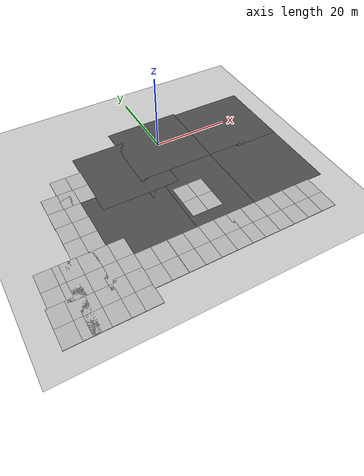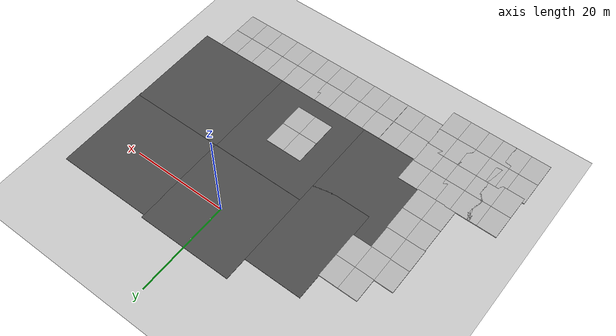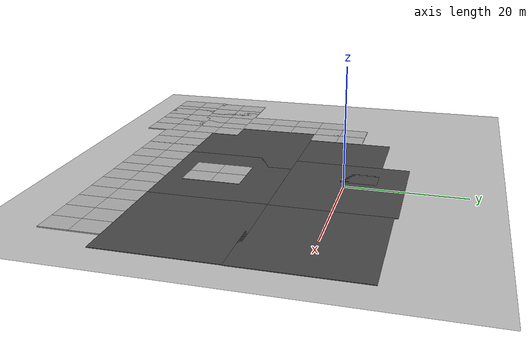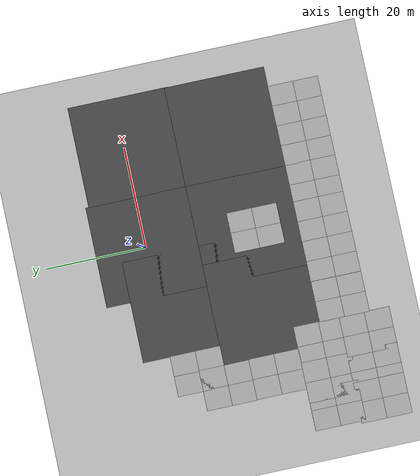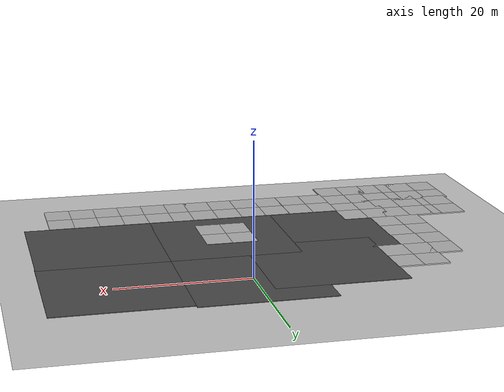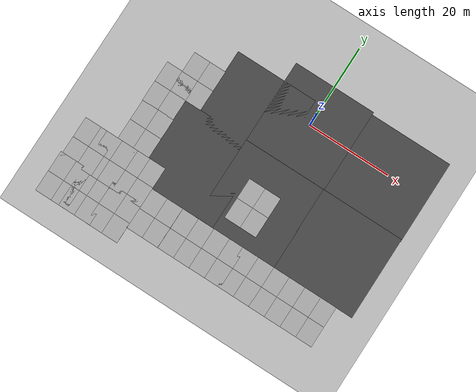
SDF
<sdf version="1.6">
 <world name="default">
  <model name="ground_plane">
   <static>1</static>
   <link name="link">
    <collision name="collision">
     <geometry><plane><normal>0 0 1</normal><size>100 100</size></plane></geometry>
     <surface><friction><ode><mu>100</mu><mu2>50</mu2></ode></friction></surface>
    </collision>
    <visual name="visual">
     <cast_shadows>0</cast_shadows>
     <geometry><plane><normal>0 0 1</normal><size>100 100</size></plane></geometry>
     <material>
      <script><uri>file://media/materials/scripts/gazebo.material</uri><name>Gazebo/Grey</name></script>
     </material>
    </visual>
   </link>
  </model>
  <model name="asphalt_plane">
   <static>1</static>
   <link name="link">
    <collision name="collision"><geometry><box><size>20 20 0.1</size></box></geometry></collision>
    <visual name="visual">
     <cast_shadows>0</cast_shadows>
     <geometry><box><size>20 20 0.1</size></box></geometry>
     <material>
      <script>
       <uri>model://asphalt_plane/materials/scripts</uri>
       <uri>model://asphalt_plane/materials/textures</uri>
       <name>vrc/asphalt</name>
      </script>
     </material>
    </visual>
   </link>
   <pose>0.101082 -0.112041 0 0 -0 0</pose>
  </model>
  <model name="mud_box_1">
   <static>1</static>
   <link name="link">
    <collision name="collision"><geometry><box><size>8 10 0.2</size></box></geometry></collision>
    <visual name="visual_1">
     <pose>-2 2.5 0 0 -0 0</pose>
     <cast_shadows>0</cast_shadows>
     <geometry><box><size>4 5 0.2</size></box></geometry>
     <material>
      <script>
       <uri>model://mud_box/materials/scripts</uri>
       <uri>model://mud_box/materials/textures</uri>
       <name>vrc/mud</name>
      </script>
     </material>
    </visual>
    <visual name="visual_2">
     <pose>2 2.5 0 0 -0 0</pose>
     <cast_shadows>0</cast_shadows>
     <geometry><box><size>4 5 0.2</size></box></geometry>
     <material>
      <script>
       <uri>model://mud_box/materials/scripts</uri>
       <uri>model://mud_box/materials/textures</uri>
       <name>vrc/mud</name>
      </script>
     </material>
    </visual>
    <visual name="visual_3">
     <pose>2 -2.5 0 0 -0 0</pose>
     <cast_shadows>0</cast_shadows>
     <geometry><box><size>4 5 0.2</size></box></geometry>
     <material>
      <script>
       <uri>model://mud_box/materials/scripts</uri>
       <uri>model://mud_box/materials/textures</uri>
       <name>vrc/mud</name>
      </script>
     </material>
    </visual>
    <visual name="visual_4">
     <pose>-2 -2.5 0 0 -0 0</pose>
     <cast_shadows>0</cast_shadows>
     <geometry><box><size>4 5 0.2</size></box></geometry>
     <material>
      <script>
       <uri>model://mud_box/materials/scripts</uri>
       <uri>model://mud_box/materials/textures</uri>
       <name>vrc/mud</name>
      </script>
     </material>
    </visual>
   </link>
   <pose>-38.2715 -38.9821 0 0 -0 0</pose>
  </model>
  <model name="mud_box_1_clone">
   <static>1</static>
   <link name="link">
    <collision name="collision"><geometry><box><size>8 10 0.2</size></box></geometry></collision>
    <visual name="visual_1">
     <pose>-2 2.5 0 0 -0 0</pose>
     <cast_shadows>0</cast_shadows>
     <geometry><box><size>4 5 0.2</size></box></geometry>
     <material>
      <script>
       <uri>model://mud_box/materials/scripts</uri>
       <uri>model://mud_box/materials/textures</uri>
       <name>vrc/mud</name>
      </script>
     </material>
    </visual>
    <visual name="visual_2">
     <pose>2 2.5 0 0 -0 0</pose>
     <cast_shadows>0</cast_shadows>
     <geometry><box><size>4 5 0.2</size></box></geometry>
     <material>
      <script>
       <uri>model://mud_box/materials/scripts</uri>
       <uri>model://mud_box/materials/textures</uri>
       <name>vrc/mud</name>
      </script>
     </material>
    </visual>
    <visual name="visual_3">
     <pose>2 -2.5 0 0 -0 0</pose>
     <cast_shadows>0</cast_shadows>
     <geometry><box><size>4 5 0.2</size></box></geometry>
     <material>
      <script>
       <uri>model://mud_box/materials/scripts</uri>
       <uri>model://mud_box/materials/textures</uri>
       <name>vrc/mud</name>
      </script>
     </material>
    </visual>
    <visual name="visual_4">
     <pose>-2 -2.5 0 0 -0 0</pose>
     <cast_shadows>0</cast_shadows>
     <geometry><box><size>4 5 0.2</size></box></geometry>
     <material>
      <script>
       <uri>model://mud_box/materials/scripts</uri>
       <uri>model://mud_box/materials/textures</uri>
       <name>vrc/mud</name>
      </script>
     </material>
    </visual>
   </link>
   <pose>-37.8344 -29.8859 0 0 -0 0</pose>
  </model>
  <model name="mud_box_1_clone_0">
   <static>1</static>
   <link name="link">
    <collision name="collision"><geometry><box><size>8 10 0.2</size></box></geometry></collision>
    <visual name="visual_1">
     <pose>-2 2.5 0 0 -0 0</pose>
     <cast_shadows>0</cast_shadows>
     <geometry><box><size>4 5 0.2</size></box></geometry>
     <material>
      <script>
       <uri>model://mud_box/materials/scripts</uri>
       <uri>model://mud_box/materials/textures</uri>
       <name>vrc/mud</name>
      </script>
     </material>
    </visual>
    <visual name="visual_2">
     <pose>2 2.5 0 0 -0 0</pose>
     <cast_shadows>0</cast_shadows>
     <geometry><box><size>4 5 0.2</size></box></geometry>
     <material>
      <script>
       <uri>model://mud_box/materials/scripts</uri>
       <uri>model://mud_box/materials/textures</uri>
       <name>vrc/mud</name>
      </script>
     </material>
    </visual>
    <visual name="visual_3">
     <pose>2 -2.5 0 0 -0 0</pose>
     <cast_shadows>0</cast_shadows>
     <geometry><box><size>4 5 0.2</size></box></geometry>
     <material>
      <script>
       <uri>model://mud_box/materials/scripts</uri>
       <uri>model://mud_box/materials/textures</uri>
       <name>vrc/mud</name>
      </script>
     </material>
    </visual>
    <visual name="visual_4">
     <pose>-2 -2.5 0 0 -0 0</pose>
     <cast_shadows>0</cast_shadows>
     <geometry><box><size>4 5 0.2</size></box></geometry>
     <material>
      <script>
       <uri>model://mud_box/materials/scripts</uri>
       <uri>model://mud_box/materials/textures</uri>
       <name>vrc/mud</name>
      </script>
     </material>
    </visual>
   </link>
   <pose>-32.3465 -29.878 0 0 -0 0</pose>
  </model>
  <model name="mud_box_1_clone_1">
   <static>1</static>
   <link name="link">
    <collision name="collision"><geometry><box><size>8 10 0.2</size></box></geometry></collision>
    <visual name="visual_1">
     <pose>-2 2.5 0 0 -0 0</pose>
     <cast_shadows>0</cast_shadows>
     <geometry><box><size>4 5 0.2</size></box></geometry>
     <material>
      <script>
       <uri>model://mud_box/materials/scripts</uri>
       <uri>model://mud_box/materials/textures</uri>
       <name>vrc/mud</name>
      </script>
     </material>
    </visual>
    <visual name="visual_2">
     <pose>2 2.5 0 0 -0 0</pose>
     <cast_shadows>0</cast_shadows>
     <geometry><box><size>4 5 0.2</size></box></geometry>
     <material>
      <script>
       <uri>model://mud_box/materials/scripts</uri>
       <uri>model://mud_box/materials/textures</uri>
       <name>vrc/mud</name>
      </script>
     </material>
    </visual>
    <visual name="visual_3">
     <pose>2 -2.5 0 0 -0 0</pose>
     <cast_shadows>0</cast_shadows>
     <geometry><box><size>4 5 0.2</size></box></geometry>
     <material>
      <script>
       <uri>model://mud_box/materials/scripts</uri>
       <uri>model://mud_box/materials/textures</uri>
       <name>vrc/mud</name>
      </script>
     </material>
    </visual>
    <visual name="visual_4">
     <pose>-2 -2.5 0 0 -0 0</pose>
     <cast_shadows>0</cast_shadows>
     <geometry><box><size>4 5 0.2</size></box></geometry>
     <material>
      <script>
       <uri>model://mud_box/materials/scripts</uri>
       <uri>model://mud_box/materials/textures</uri>
       <name>vrc/mud</name>
      </script>
     </material>
    </visual>
   </link>
   <pose>-32.2902 -38.9747 0 0 -0 0</pose>
  </model>
  <model name="mud_box_1_clone_2">
   <static>1</static>
   <link name="link">
    <collision name="collision"><geometry><box><size>8 10 0.2</size></box></geometry></collision>
    <visual name="visual_1">
     <pose>-2 2.5 0 0 -0 0</pose>
     <cast_shadows>0</cast_shadows>
     <geometry><box><size>4 5 0.2</size></box></geometry>
     <material>
      <script>
       <uri>model://mud_box/materials/scripts</uri>
       <uri>model://mud_box/materials/textures</uri>
       <name>vrc/mud</name>
      </script>
     </material>
    </visual>
    <visual name="visual_2">
     <pose>2 2.5 0 0 -0 0</pose>
     <cast_shadows>0</cast_shadows>
     <geometry><box><size>4 5 0.2</size></box></geometry>
     <material>
      <script>
       <uri>model://mud_box/materials/scripts</uri>
       <uri>model://mud_box/materials/textures</uri>
       <name>vrc/mud</name>
      </script>
     </material>
    </visual>
    <visual name="visual_3">
     <pose>2 -2.5 0 0 -0 0</pose>
     <cast_shadows>0</cast_shadows>
     <geometry><box><size>4 5 0.2</size></box></geometry>
     <material>
      <script>
       <uri>model://mud_box/materials/scripts</uri>
       <uri>model://mud_box/materials/textures</uri>
       <name>vrc/mud</name>
      </script>
     </material>
    </visual>
    <visual name="visual_4">
     <pose>-2 -2.5 0 0 -0 0</pose>
     <cast_shadows>0</cast_shadows>
     <geometry><box><size>4 5 0.2</size></box></geometry>
     <material>
      <script>
       <uri>model://mud_box/materials/scripts</uri>
       <uri>model://mud_box/materials/textures</uri>
       <name>vrc/mud</name>
      </script>
     </material>
    </visual>
   </link>
   <pose>-25.1879 -38.9993 0 0 -0 0</pose>
  </model>
  <model name="mud_box_1_clone_3">
   <static>1</static>
   <link name="link">
    <collision name="collision"><geometry><box><size>8 10 0.2</size></box></geometry></collision>
    <visual name="visual_1">
     <pose>-2 2.5 0 0 -0 0</pose>
     <cast_shadows>0</cast_shadows>
     <geometry><box><size>4 5 0.2</size></box></geometry>
     <material>
      <script>
       <uri>model://mud_box/materials/scripts</uri>
       <uri>model://mud_box/materials/textures</uri>
       <name>vrc/mud</name>
      </script>
     </material>
    </visual>
    <visual name="visual_2">
     <pose>2 2.5 0 0 -0 0</pose>
     <cast_shadows>0</cast_shadows>
     <geometry><box><size>4 5 0.2</size></box></geometry>
     <material>
      <script>
       <uri>model://mud_box/materials/scripts</uri>
       <uri>model://mud_box/materials/textures</uri>
       <name>vrc/mud</name>
      </script>
     </material>
    </visual>
    <visual name="visual_3">
     <pose>2 -2.5 0 0 -0 0</pose>
     <cast_shadows>0</cast_shadows>
     <geometry><box><size>4 5 0.2</size></box></geometry>
     <material>
      <script>
       <uri>model://mud_box/materials/scripts</uri>
       <uri>model://mud_box/materials/textures</uri>
       <name>vrc/mud</name>
      </script>
     </material>
    </visual>
    <visual name="visual_4">
     <pose>-2 -2.5 0 0 -0 0</pose>
     <cast_shadows>0</cast_shadows>
     <geometry><box><size>4 5 0.2</size></box></geometry>
     <material>
      <script>
       <uri>model://mud_box/materials/scripts</uri>
       <uri>model://mud_box/materials/textures</uri>
       <name>vrc/mud</name>
      </script>
     </material>
    </visual>
   </link>
   <pose>-25.1987 -29.8666 0 0 -0 0</pose>
  </model>
  <model name="asphalt_plane_1">
   <static>1</static>
   <link name="link">
    <collision name="collision"><geometry><box><size>20 20 0.1</size></box></geometry></collision>
    <visual name="visual">
     <cast_shadows>0</cast_shadows>
     <geometry><box><size>20 20 0.1</size></box></geometry>
     <material>
      <script>
       <uri>model://asphalt_plane/materials/scripts</uri>
       <uri>model://asphalt_plane/materials/textures</uri>
       <name>vrc/asphalt</name>
      </script>
     </material>
    </visual>
   </link>
   <pose>-15.6521 -20.0746 0 0 -0 0</pose>
  </model>
  <model name="asphalt_plane_2">
   <static>1</static>
   <link name="link">
    <collision name="collision"><geometry><box><size>20 20 0.1</size></box></geometry></collision>
    <visual name="visual">
     <cast_shadows>0</cast_shadows>
     <geometry><box><size>20 20 0.1</size></box></geometry>
     <material>
      <script>
       <uri>model://asphalt_plane/materials/scripts</uri>
       <uri>model://asphalt_plane/materials/textures</uri>
       <name>vrc/asphalt</name>
      </script>
     </material>
    </visual>
   </link>
   <pose>-11.8663 -4.83897 0 0 -0 0</pose>
  </model>
  <model name="asphalt_plane_3">
   <static>1</static>
   <link name="link">
    <collision name="collision"><geometry><box><size>20 20 0.1</size></box></geometry></collision>
    <visual name="visual">
     <cast_shadows>0</cast_shadows>
     <geometry><box><size>20 20 0.1</size></box></geometry>
     <material>
      <script>
       <uri>model://asphalt_plane/materials/scripts</uri>
       <uri>model://asphalt_plane/materials/textures</uri>
       <name>vrc/asphalt</name>
      </script>
     </material>
    </visual>
   </link>
   <pose>0.069914 -20.1175 0 0 -0 0</pose>
  </model>
  <model name="mud_box">
   <static>1</static>
   <link name="link">
    <collision name="collision"><geometry><box><size>8 10 0.2</size></box></geometry></collision>
    <visual name="visual_1">
     <pose>-2 2.5 0 0 -0 0</pose>
     <cast_shadows>0</cast_shadows>
     <geometry><box><size>4 5 0.2</size></box></geometry>
     <material>
      <script>
       <uri>model://mud_box/materials/scripts</uri>
       <uri>model://mud_box/materials/textures</uri>
       <name>vrc/mud</name>
      </script>
     </material>
    </visual>
    <visual name="visual_2">
     <pose>2 2.5 0 0 -0 0</pose>
     <cast_shadows>0</cast_shadows>
     <geometry><box><size>4 5 0.2</size></box></geometry>
     <material>
      <script>
       <uri>model://mud_box/materials/scripts</uri>
       <uri>model://mud_box/materials/textures</uri>
       <name>vrc/mud</name>
      </script>
     </material>
    </visual>
    <visual name="visual_3">
     <pose>2 -2.5 0 0 -0 0</pose>
     <cast_shadows>0</cast_shadows>
     <geometry><box><size>4 5 0.2</size></box></geometry>
     <material>
      <script>
       <uri>model://mud_box/materials/scripts</uri>
       <uri>model://mud_box/materials/textures</uri>
       <name>vrc/mud</name>
      </script>
     </material>
    </visual>
    <visual name="visual_4">
     <pose>-2 -2.5 0 0 -0 0</pose>
     <cast_shadows>0</cast_shadows>
     <geometry><box><size>4 5 0.2</size></box></geometry>
     <material>
      <script>
       <uri>model://mud_box/materials/scripts</uri>
       <uri>model://mud_box/materials/textures</uri>
       <name>vrc/mud</name>
      </script>
     </material>
    </visual>
   </link>
   <pose>-17.3113 -35.1015 0 0 -0 0</pose>
  </model>
  <model name="mud_box_clone">
   <static>1</static>
   <link name="link">
    <collision name="collision"><geometry><box><size>8 10 0.2</size></box></geometry></collision>
    <visual name="visual_1">
     <pose>-2 2.5 0 0 -0 0</pose>
     <cast_shadows>0</cast_shadows>
     <geometry><box><size>4 5 0.2</size></box></geometry>
     <material>
      <script>
       <uri>model://mud_box/materials/scripts</uri>
       <uri>model://mud_box/materials/textures</uri>
       <name>vrc/mud</name>
      </script>
     </material>
    </visual>
    <visual name="visual_2">
     <pose>2 2.5 0 0 -0 0</pose>
     <cast_shadows>0</cast_shadows>
     <geometry><box><size>4 5 0.2</size></box></geometry>
     <material>
      <script>
       <uri>model://mud_box/materials/scripts</uri>
       <uri>model://mud_box/materials/textures</uri>
       <name>vrc/mud</name>
      </script>
     </material>
    </visual>
    <visual name="visual_3">
     <pose>2 -2.5 0 0 -0 0</pose>
     <cast_shadows>0</cast_shadows>
     <geometry><box><size>4 5 0.2</size></box></geometry>
     <material>
      <script>
       <uri>model://mud_box/materials/scripts</uri>
       <uri>model://mud_box/materials/textures</uri>
       <name>vrc/mud</name>
      </script>
     </material>
    </visual>
    <visual name="visual_4">
     <pose>-2 -2.5 0 0 -0 0</pose>
     <cast_shadows>0</cast_shadows>
     <geometry><box><size>4 5 0.2</size></box></geometry>
     <material>
      <script>
       <uri>model://mud_box/materials/scripts</uri>
       <uri>model://mud_box/materials/textures</uri>
       <name>vrc/mud</name>
      </script>
     </material>
    </visual>
   </link>
   <pose>-9.27186 -35.0984 0 0 -0 0</pose>
  </model>
  <model name="mud_box_clone_0">
   <static>1</static>
   <link name="link">
    <collision name="collision"><geometry><box><size>8 10 0.2</size></box></geometry></collision>
    <visual name="visual_1">
     <pose>-2 2.5 0 0 -0 0</pose>
     <cast_shadows>0</cast_shadows>
     <geometry><box><size>4 5 0.2</size></box></geometry>
     <material>
      <script>
       <uri>model://mud_box/materials/scripts</uri>
       <uri>model://mud_box/materials/textures</uri>
       <name>vrc/mud</name>
      </script>
     </material>
    </visual>
    <visual name="visual_2">
     <pose>2 2.5 0 0 -0 0</pose>
     <cast_shadows>0</cast_shadows>
     <geometry><box><size>4 5 0.2</size></box></geometry>
     <material>
      <script>
       <uri>model://mud_box/materials/scripts</uri>
       <uri>model://mud_box/materials/textures</uri>
       <name>vrc/mud</name>
      </script>
     </material>
    </visual>
    <visual name="visual_3">
     <pose>2 -2.5 0 0 -0 0</pose>
     <cast_shadows>0</cast_shadows>
     <geometry><box><size>4 5 0.2</size></box></geometry>
     <material>
      <script>
       <uri>model://mud_box/materials/scripts</uri>
       <uri>model://mud_box/materials/textures</uri>
       <name>vrc/mud</name>
      </script>
     </material>
    </visual>
    <visual name="visual_4">
     <pose>-2 -2.5 0 0 -0 0</pose>
     <cast_shadows>0</cast_shadows>
     <geometry><box><size>4 5 0.2</size></box></geometry>
     <material>
      <script>
       <uri>model://mud_box/materials/scripts</uri>
       <uri>model://mud_box/materials/textures</uri>
       <name>vrc/mud</name>
      </script>
     </material>
    </visual>
   </link>
   <pose>-1.30074 -35.0661 0 0 -0 0</pose>
  </model>
  <model name="mud_box_clone_1">
   <static>1</static>
   <link name="link">
    <collision name="collision"><geometry><box><size>8 10 0.2</size></box></geometry></collision>
    <visual name="visual_1">
     <pose>-2 2.5 0 0 -0 0</pose>
     <cast_shadows>0</cast_shadows>
     <geometry><box><size>4 5 0.2</size></box></geometry>
     <material>
      <script>
       <uri>model://mud_box/materials/scripts</uri>
       <uri>model://mud_box/materials/textures</uri>
       <name>vrc/mud</name>
      </script>
     </material>
    </visual>
    <visual name="visual_2">
     <pose>2 2.5 0 0 -0 0</pose>
     <cast_shadows>0</cast_shadows>
     <geometry><box><size>4 5 0.2</size></box></geometry>
     <material>
      <script>
       <uri>model://mud_box/materials/scripts</uri>
       <uri>model://mud_box/materials/textures</uri>
       <name>vrc/mud</name>
      </script>
     </material>
    </visual>
    <visual name="visual_3">
     <pose>2 -2.5 0 0 -0 0</pose>
     <cast_shadows>0</cast_shadows>
     <geometry><box><size>4 5 0.2</size></box></geometry>
     <material>
      <script>
       <uri>model://mud_box/materials/scripts</uri>
       <uri>model://mud_box/materials/textures</uri>
       <name>vrc/mud</name>
      </script>
     </material>
    </visual>
    <visual name="visual_4">
     <pose>-2 -2.5 0 0 -0 0</pose>
     <cast_shadows>0</cast_shadows>
     <geometry><box><size>4 5 0.2</size></box></geometry>
     <material>
      <script>
       <uri>model://mud_box/materials/scripts</uri>
       <uri>model://mud_box/materials/textures</uri>
       <name>vrc/mud</name>
      </script>
     </material>
    </visual>
   </link>
   <pose>6.05534 -35.0615 0 0 -0 0</pose>
  </model>
  <model name="mud_box_clone_2">
   <static>1</static>
   <link name="link">
    <collision name="collision"><geometry><box><size>8 10 0.2</size></box></geometry></collision>
    <visual name="visual_1">
     <pose>-2 2.5 0 0 -0 0</pose>
     <cast_shadows>0</cast_shadows>
     <geometry><box><size>4 5 0.2</size></box></geometry>
     <material>
      <script>
       <uri>model://mud_box/materials/scripts</uri>
       <uri>model://mud_box/materials/textures</uri>
       <name>vrc/mud</name>
      </script>
     </material>
    </visual>
    <visual name="visual_2">
     <pose>2 2.5 0 0 -0 0</pose>
     <cast_shadows>0</cast_shadows>
     <geometry><box><size>4 5 0.2</size></box></geometry>
     <material>
      <script>
       <uri>model://mud_box/materials/scripts</uri>
       <uri>model://mud_box/materials/textures</uri>
       <name>vrc/mud</name>
      </script>
     </material>
    </visual>
    <visual name="visual_3">
     <pose>2 -2.5 0 0 -0 0</pose>
     <cast_shadows>0</cast_shadows>
     <geometry><box><size>4 5 0.2</size></box></geometry>
     <material>
      <script>
       <uri>model://mud_box/materials/scripts</uri>
       <uri>model://mud_box/materials/textures</uri>
       <name>vrc/mud</name>
      </script>
     </material>
    </visual>
    <visual name="visual_4">
     <pose>-2 -2.5 0 0 -0 0</pose>
     <cast_shadows>0</cast_shadows>
     <geometry><box><size>4 5 0.2</size></box></geometry>
     <material>
      <script>
       <uri>model://mud_box/materials/scripts</uri>
       <uri>model://mud_box/materials/textures</uri>
       <name>vrc/mud</name>
      </script>
     </material>
    </visual>
   </link>
   <pose>-29.501 -20.0035 0 0 -0 0</pose>
  </model>
  <model name="mud_box_clone_3">
   <static>1</static>
   <link name="link">
    <collision name="collision"><geometry><box><size>8 10 0.2</size></box></geometry></collision>
    <visual name="visual_1">
     <pose>-2 2.5 0 0 -0 0</pose>
     <cast_shadows>0</cast_shadows>
     <geometry><box><size>4 5 0.2</size></box></geometry>
     <material>
      <script>
       <uri>model://mud_box/materials/scripts</uri>
       <uri>model://mud_box/materials/textures</uri>
       <name>vrc/mud</name>
      </script>
     </material>
    </visual>
    <visual name="visual_2">
     <pose>2 2.5 0 0 -0 0</pose>
     <cast_shadows>0</cast_shadows>
     <geometry><box><size>4 5 0.2</size></box></geometry>
     <material>
      <script>
       <uri>model://mud_box/materials/scripts</uri>
       <uri>model://mud_box/materials/textures</uri>
       <name>vrc/mud</name>
      </script>
     </material>
    </visual>
    <visual name="visual_3">
     <pose>2 -2.5 0 0 -0 0</pose>
     <cast_shadows>0</cast_shadows>
     <geometry><box><size>4 5 0.2</size></box></geometry>
     <material>
      <script>
       <uri>model://mud_box/materials/scripts</uri>
       <uri>model://mud_box/materials/textures</uri>
       <name>vrc/mud</name>
      </script>
     </material>
    </visual>
    <visual name="visual_4">
     <pose>-2 -2.5 0 0 -0 0</pose>
     <cast_shadows>0</cast_shadows>
     <geometry><box><size>4 5 0.2</size></box></geometry>
     <material>
      <script>
       <uri>model://mud_box/materials/scripts</uri>
       <uri>model://mud_box/materials/textures</uri>
       <name>vrc/mud</name>
      </script>
     </material>
    </visual>
   </link>
   <pose>-29.5985 -10.0859 0 0 -0 0</pose>
  </model>
  <model name="mud_box_clone_4">
   <static>1</static>
   <link name="link">
    <collision name="collision"><geometry><box><size>8 10 0.2</size></box></geometry></collision>
    <visual name="visual_1">
     <pose>-2 2.5 0 0 -0 0</pose>
     <cast_shadows>0</cast_shadows>
     <geometry><box><size>4 5 0.2</size></box></geometry>
     <material>
      <script>
       <uri>model://mud_box/materials/scripts</uri>
       <uri>model://mud_box/materials/textures</uri>
       <name>vrc/mud</name>
      </script>
     </material>
    </visual>
    <visual name="visual_2">
     <pose>2 2.5 0 0 -0 0</pose>
     <cast_shadows>0</cast_shadows>
     <geometry><box><size>4 5 0.2</size></box></geometry>
     <material>
      <script>
       <uri>model://mud_box/materials/scripts</uri>
       <uri>model://mud_box/materials/textures</uri>
       <name>vrc/mud</name>
      </script>
     </material>
    </visual>
    <visual name="visual_3">
     <pose>2 -2.5 0 0 -0 0</pose>
     <cast_shadows>0</cast_shadows>
     <geometry><box><size>4 5 0.2</size></box></geometry>
     <material>
      <script>
       <uri>model://mud_box/materials/scripts</uri>
       <uri>model://mud_box/materials/textures</uri>
       <name>vrc/mud</name>
      </script>
     </material>
    </visual>
    <visual name="visual_4">
     <pose>-2 -2.5 0 0 -0 0</pose>
     <cast_shadows>0</cast_shadows>
     <geometry><box><size>4 5 0.2</size></box></geometry>
     <material>
      <script>
       <uri>model://mud_box/materials/scripts</uri>
       <uri>model://mud_box/materials/textures</uri>
       <name>vrc/mud</name>
      </script>
     </material>
    </visual>
   </link>
   <pose>-25.7384 -5.14281 0 0 -0 0</pose>
  </model>
  <model name="mud_box_clone_14">
   <static>1</static>
   <link name="link">
    <collision name="collision"><geometry><box><size>8 10 0.2</size></box></geometry></collision>
    <visual name="visual_1">
     <pose>-2 2.5 0 0 -0 0</pose>
     <cast_shadows>0</cast_shadows>
     <geometry><box><size>4 5 0.2</size></box></geometry>
     <material>
      <script>
       <uri>model://mud_box/materials/scripts</uri>
       <uri>model://mud_box/materials/textures</uri>
       <name>vrc/mud</name>
      </script>
     </material>
    </visual>
    <visual name="visual_2">
     <pose>2 2.5 0 0 -0 0</pose>
     <cast_shadows>0</cast_shadows>
     <geometry><box><size>4 5 0.2</size></box></geometry>
     <material>
      <script>
       <uri>model://mud_box/materials/scripts</uri>
       <uri>model://mud_box/materials/textures</uri>
       <name>vrc/mud</name>
      </script>
     </material>
    </visual>
    <visual name="visual_3">
     <pose>2 -2.5 0 0 -0 0</pose>
     <cast_shadows>0</cast_shadows>
     <geometry><box><size>4 5 0.2</size></box></geometry>
     <material>
      <script>
       <uri>model://mud_box/materials/scripts</uri>
       <uri>model://mud_box/materials/textures</uri>
       <name>vrc/mud</name>
      </script>
     </material>
    </visual>
    <visual name="visual_4">
     <pose>-2 -2.5 0 0 -0 0</pose>
     <cast_shadows>0</cast_shadows>
     <geometry><box><size>4 5 0.2</size></box></geometry>
     <material>
      <script>
       <uri>model://mud_box/materials/scripts</uri>
       <uri>model://mud_box/materials/textures</uri>
       <name>vrc/mud</name>
      </script>
     </material>
    </visual>
   </link>
   <pose>13.9723 -35.0651 0 0 -0 0</pose>
  </model>
  <model name="mud_box_clone_15">
   <static>1</static>
   <link name="link">
    <collision name="collision"><geometry><box><size>8 10 0.2</size></box></geometry></collision>
    <visual name="visual_1">
     <pose>-2 2.5 0 0 -0 0</pose>
     <cast_shadows>0</cast_shadows>
     <geometry><box><size>4 5 0.2</size></box></geometry>
     <material>
      <script>
       <uri>model://mud_box/materials/scripts</uri>
       <uri>model://mud_box/materials/textures</uri>
       <name>vrc/mud</name>
      </script>
     </material>
    </visual>
    <visual name="visual_2">
     <pose>2 2.5 0 0 -0 0</pose>
     <cast_shadows>0</cast_shadows>
     <geometry><box><size>4 5 0.2</size></box></geometry>
     <material>
      <script>
       <uri>model://mud_box/materials/scripts</uri>
       <uri>model://mud_box/materials/textures</uri>
       <name>vrc/mud</name>
      </script>
     </material>
    </visual>
    <visual name="visual_3">
     <pose>2 -2.5 0 0 -0 0</pose>
     <cast_shadows>0</cast_shadows>
     <geometry><box><size>4 5 0.2</size></box></geometry>
     <material>
      <script>
       <uri>model://mud_box/materials/scripts</uri>
       <uri>model://mud_box/materials/textures</uri>
       <name>vrc/mud</name>
      </script>
     </material>
    </visual>
    <visual name="visual_4">
     <pose>-2 -2.5 0 0 -0 0</pose>
     <cast_shadows>0</cast_shadows>
     <geometry><box><size>4 5 0.2</size></box></geometry>
     <material>
      <script>
       <uri>model://mud_box/materials/scripts</uri>
       <uri>model://mud_box/materials/textures</uri>
       <name>vrc/mud</name>
      </script>
     </material>
    </visual>
   </link>
   <pose>21.9713 -35.0394 0 0 -0 0</pose>
  </model>
  <model name="asphalt_plane_4">
   <static>1</static>
   <link name="link">
    <collision name="collision"><geometry><box><size>20 20 0.1</size></box></geometry></collision>
    <visual name="visual">
     <cast_shadows>0</cast_shadows>
     <geometry><box><size>20 20 0.1</size></box></geometry>
     <material>
      <script>
       <uri>model://asphalt_plane/materials/scripts</uri>
       <uri>model://asphalt_plane/materials/textures</uri>
       <name>vrc/asphalt</name>
      </script>
     </material>
    </visual>
   </link>
   <pose>19.9485 -20.0912 0 0 -0 0</pose>
  </model>
  <model name="asphalt_plane_4_clone">
   <static>1</static>
   <link name="link">
    <collision name="collision"><geometry><box><size>20 20 0.1</size></box></geometry></collision>
    <visual name="visual">
     <cast_shadows>0</cast_shadows>
     <geometry><box><size>20 20 0.1</size></box></geometry>
     <material>
      <script>
       <uri>model://asphalt_plane/materials/scripts</uri>
       <uri>model://asphalt_plane/materials/textures</uri>
       <name>vrc/asphalt</name>
      </script>
     </material>
    </visual>
   </link>
   <pose>20.0199 -0.715589 0 0 -0 0</pose>
  </model>
  <model name="mud_box_2">
   <static>1</static>
   <link name="link">
    <collision name="collision"><geometry><box><size>8 10 0.2</size></box></geometry></collision>
    <visual name="visual_1">
     <pose>-2 2.5 0 0 -0 0</pose>
     <cast_shadows>0</cast_shadows>
     <geometry><box><size>4 5 0.2</size></box></geometry>
     <material>
      <script>
       <uri>model://mud_box/materials/scripts</uri>
       <uri>model://mud_box/materials/textures</uri>
       <name>vrc/mud</name>
      </script>
     </material>
    </visual>
    <visual name="visual_2">
     <pose>2 2.5 0 0 -0 0</pose>
     <cast_shadows>0</cast_shadows>
     <geometry><box><size>4 5 0.2</size></box></geometry>
     <material>
      <script>
       <uri>model://mud_box/materials/scripts</uri>
       <uri>model://mud_box/materials/textures</uri>
       <name>vrc/mud</name>
      </script>
     </material>
    </visual>
    <visual name="visual_3">
     <pose>2 -2.5 0 0 -0 0</pose>
     <cast_shadows>0</cast_shadows>
     <geometry><box><size>4 5 0.2</size></box></geometry>
     <material>
      <script>
       <uri>model://mud_box/materials/scripts</uri>
       <uri>model://mud_box/materials/textures</uri>
       <name>vrc/mud</name>
      </script>
     </material>
    </visual>
    <visual name="visual_4">
     <pose>-2 -2.5 0 0 -0 0</pose>
     <cast_shadows>0</cast_shadows>
     <geometry><box><size>4 5 0.2</size></box></geometry>
     <material>
      <script>
       <uri>model://mud_box/materials/scripts</uri>
       <uri>model://mud_box/materials/textures</uri>
       <name>vrc/mud</name>
      </script>
     </material>
    </visual>
   </link>
   <pose>-0.72677 -21.8122 0 0 -0 0</pose>
  </model>
 </world>
</sdf>
